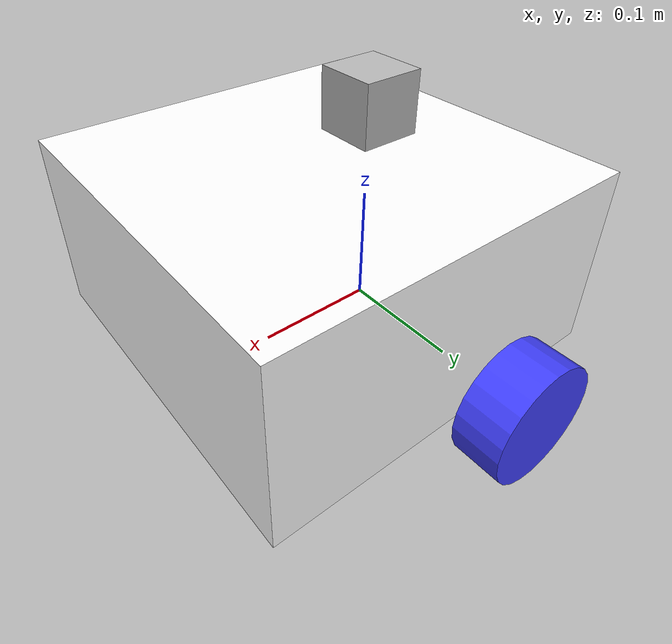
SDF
<?xml version="1.0" ?>
<sdf version="1.6">
  <model name="differential_drive_robot">
    <static>false</static>

    <!-- Base Link -->
    <link name="base_link">

    </link>

    <!-- Chassis Link -->
    <link name="chassis">
      <pose>-0.1 0 0 0 0 0</pose>
      <inertial>
        <pose>0.15 0 0.075 0 0 0</pose>
        <mass>0.59999999999999998</mass>
        <inertia>
          <ixx>0.0052562499999999988</ixx>
          <ixy>0</ixy>
          <ixz>0.00056250000000000007</ixz>
          <iyy>0.0059312499999999964</iyy>
          <iyz>0</iyz>
          <izz>0.0082749999999999976</izz>
        </inertia>
      </inertial>
      <collision name="collision">
        <pose>0.15 0 0.075 0 0 0</pose>
        <geometry>
          <box>
            <size>0.3 0.3 0.15</size>
          </box>
        </geometry>
      </collision>
      <visual name="visual">
        <pose>0.15 0 0.075 0 0 0</pose>
        <geometry>
          <box>
            <size>0.3 0.3 0.15</size>
          </box>
        </geometry>
        <material>
          <diffuse>1 1 1 1</diffuse>
          <ambient>1 1 1 1</ambient>
        </material>
      </visual>
    </link>
    <joint name="chassis_joint" type="fixed">
      <parent>base_link</parent>
      <child>chassis</child>
    </joint>

    <!-- Left Wheel -->
    <link name="left_wheel">
      <pose>0 0.175 0 -1.5708 0 0</pose>
      <inertial>
        <mass>1.0</mass>
        <inertia>
          <ixx>0.01</ixx>
          <iyy>0.01</iyy>
          <izz>0.01</izz>
        </inertia>
      </inertial>
      <collision name="collision">
        <geometry>
          <cylinder>
            <radius>0.05</radius>
            <length>0.04</length>
          </cylinder>
        </geometry>
      </collision>
      <visual name="visual">
        <geometry>
          <cylinder>
            <radius>0.05</radius>
            <length>0.04</length>
          </cylinder>
        </geometry>
        <material>
          <diffuse>0.25 0.25 1 1</diffuse>
          <ambient>0.25 0.25 1 1</ambient>
        </material>
      </visual>
    </link>
    <joint name="left_wheel_joint" type="revolute">
      <parent>base_link</parent>
      <child>left_wheel</child>
      <axis>
        <xyz>0 0 1</xyz>
        <limit>
          <lower>-10000000000000000</lower>
          <upper>10000000000000000</upper>
        </limit>
      </axis>
    </joint>

    <!-- Right Wheel -->
    <link name="right_wheel">
      <pose>0 -0.175 0 1.5708 0 0</pose>
      <inertial>
        <pose>0 0 0 0 0 0</pose>
        <mass>0.10000000000000001</mass>
        <inertia>
          <ixx>7.5833333333333352e-05</ixx>
          <ixy>0</ixy>
          <ixz>0</ixz>
          <iyy>7.5833333333333352e-05</iyy>
          <iyz>0</iyz>
          <izz>0.000125</izz>
        </inertia>
      </inertial>
      <collision name="collision">
        <geometry>
          <cylinder>
            <radius>0.05</radius>
            <length>0.04</length>
          </cylinder>
        </geometry>
      </collision>
      <visual name="visual">
        <geometry>
          <cylinder>
            <radius>0.05</radius>
            <length>0.04</length>
          </cylinder>
        </geometry>
        <material>
          <diffuse>0.25 0.25 1 1</diffuse>
          <ambient>0.25 0.25 1 1</ambient>
        </material>
      </visual>
    </link>
    <joint name="right_wheel_joint" type="revolute">
      <parent>base_link</parent>
      <child>right_wheel</child>
      <axis>
        <xyz>0 0 -1</xyz>
        <limit>
          <lower>-10000000000000000</lower>
          <upper>10000000000000000</upper>
        </limit>
      </axis>
    </joint>

    <!-- Caster Wheel -->
    <link name="caster_wheel">
      <pose>0.14 0 0 0 0 0</pose>
      <inertial>
        <mass>0.5</mass>
        <inertia>
          <ixx>0.005</ixx>
          <iyy>0.005</iyy>
          <izz>0.005</izz>
        </inertia>
      </inertial>
      <collision name="collision">
        <geometry>
          <sphere>
            <radius>0.05</radius>
          </sphere>
        </geometry>
      </collision>
      <surface>
        <friction>
          <ode>
            <mu>0.005</mu>
            <mu2>0.005</mu2>
          </ode>
        </friction>
      </surface>
      <visual name="visual">
        <geometry>
          <sphere>
            <radius>0.05</radius>
          </sphere>
        </geometry>
        <material>
          <diffuse>0.25 0.25 1 1</diffuse>
          <ambient>0.25 0.25 1 1</ambient>
        </material>
      </visual>
    </link>
    <joint name="caster_wheel_joint" type="fixed">
      <parent>chassis</parent>
      <child>caster_wheel</child>
    </joint>

    <link name="lidar_link">
      <pose>0 0 0.18 0 0 0</pose>
      <inertial>
        <mass>0.1</mass>
        <inertia>
          <ixx>0.000166667</ixx>
          <iyy>0.000166667</iyy>
          <izz>0.000166667</izz>
        </inertia>
      </inertial>
      <collision name="collision">
        <geometry>
          <box>
            <size>0.05 0.05 0.05</size>
          </box>
        </geometry>
      </collision>
      <visual name="visual">
        <geometry>
          <box>
            <size>0.05 0.05 0.05</size>
          </box>
        </geometry>
      </visual>
<sensor name='gpu_lidar' type='gpu_lidar'>"
    <pose relative_to='lidar_link'>0 0 0 0 0 0</pose>
    <topic>scan</topic>
    <gz_frame_id>roboto/lidar_link</gz_frame_id>
    <update_rate>5</update_rate>
    <ray>
        <scan>
            <horizontal>
                <samples>500</samples>
                <resolution>1</resolution>
                <min_angle>-3.14</min_angle>
                <max_angle>3.14</max_angle>
            </horizontal>
            <vertical>
                <samples>1</samples>
                <resolution>0.01</resolution>
                <min_angle>0</min_angle>
                <max_angle>0</max_angle>
            </vertical>
        </scan>
        <range>
            <min>0.08</min>
            <max>10.0</max>
            <resolution>0.01</resolution>
        </range>
    </ray>
    <always_on>1</always_on>
    <visualize>true</visualize>
</sensor>
    </link>

    <joint name='lidar_joint' type='fixed'>
      <parent>base_link</parent>
      <child>lidar_link</child>
    </joint>

    <!-- Differential Drive Plugin -->
  <plugin filename="gz-sim-diff-drive-system" name="gz::sim::systems::DiffDrive">
    <left_joint>left_wheel_joint</left_joint>
    <right_joint>right_wheel_joint</right_joint>
    <wheel_separation>0.35</wheel_separation>
    <wheel_radius>0.05</wheel_radius>
    <max_acceleration>0.3</max_acceleration>
    <min_acceleration>-0.3</min_acceleration>
  </plugin>

  </model>
</sdf>
